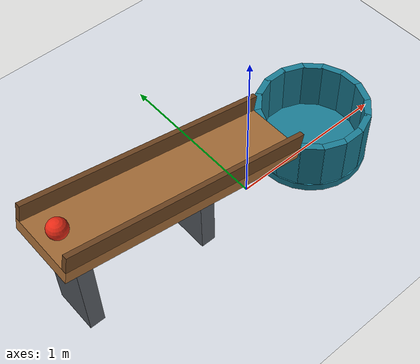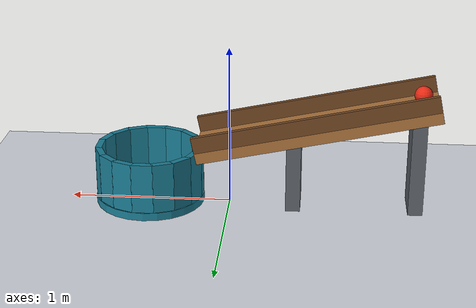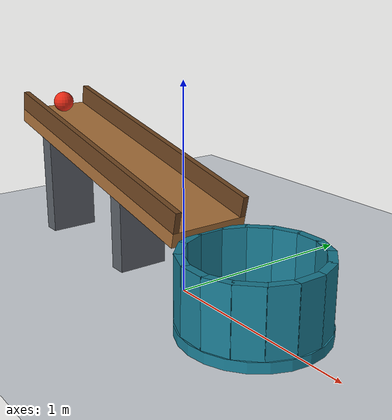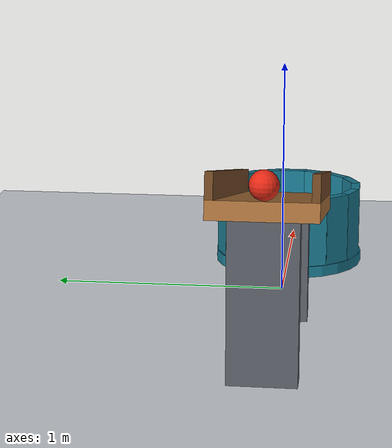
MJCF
<mujoco model="ball_ramp_cup">
  <compiler angle="degree"/>
  <option timestep="0.002" gravity="0 0 -9.81" integrator="implicitfast" cone="elliptic" iterations="60"/>
  <visual>
    <global azimuth="120" elevation="-25"/>
    <rgba haze="0.9 0.94 1 1"/>
  </visual>

  <worldbody>
    <light name="overhead" pos="-0.5 -1 3" dir="0.2 0.3 -1" diffuse="0.8 0.8 0.8"/>
    <camera name="overview" pos="-0.45 -3.2 1.8" xyaxes="1 0 0 0 0.43 0.903"/>

    <geom name="floor" type="plane" size="3 2 0.1" rgba="0.82 0.84 0.87 1" friction="1 0.01 0.005" condim="6"/>

    <!-- The ramp slopes downward toward positive x by 12 degrees. -->
    <body name="ramp" pos="-0.540888 0 0.511699" quat="0.994521895 0 0.104528463 0">
      <geom name="ramp_surface" type="box" size="0.75 0.20 0.035" rgba="0.65 0.43 0.22 1" friction="0.9 0.005 0.0005" condim="6" solref="0.01 1" solimp="0.95 0.99 0.001"/>
      <geom name="ramp_rail_left" type="box" pos="0 0.185 0.085" size="0.75 0.015 0.05" rgba="0.43 0.27 0.13 1" friction="0.8 0.005 0.0005" condim="6"/>
      <geom name="ramp_rail_right" type="box" pos="0 -0.185 0.085" size="0.75 0.015 0.05" rgba="0.43 0.27 0.13 1" friction="0.8 0.005 0.0005" condim="6"/>
    </body>

    <body name="ramp_stand">
      <geom name="ramp_support_upper" type="box" pos="-1.15 0 0.3075" size="0.045 0.13 0.3075" rgba="0.35 0.37 0.40 1"/>
      <geom name="ramp_support_lower" type="box" pos="-0.40 0 0.2275" size="0.045 0.13 0.2275" rgba="0.35 0.37 0.40 1"/>
    </body>

    <!-- An open cup: a solid bottom and sixteen overlapping wall segments. -->
    <body name="cup" pos="0.50 0 0">
      <geom name="cup_bottom" type="cylinder" pos="0 0 0.025" size="0.34 0.025" rgba="0.10 0.48 0.57 1" friction="1.2 0.01 0.006" condim="6" solref="0.01 1" solimp="0.95 0.99 0.001"/>
      <geom name="cup_wall_00" type="box" pos="0.310000 0 0.205" euler="0 0 0" size="0.02 0.067 0.155" rgba="0.10 0.48 0.57 1" friction="1.2 0.01 0.006" condim="6" solref="0.01 1"/>
      <geom name="cup_wall_01" type="box" pos="0.286403 0.118632 0.205" euler="0 0 22.5" size="0.02 0.067 0.155" rgba="0.10 0.48 0.57 1" friction="1.2 0.01 0.006" condim="6" solref="0.01 1"/>
      <geom name="cup_wall_02" type="box" pos="0.219203 0.219203 0.205" euler="0 0 45" size="0.02 0.067 0.155" rgba="0.10 0.48 0.57 1" friction="1.2 0.01 0.006" condim="6" solref="0.01 1"/>
      <geom name="cup_wall_03" type="box" pos="0.118632 0.286403 0.205" euler="0 0 67.5" size="0.02 0.067 0.155" rgba="0.10 0.48 0.57 1" friction="1.2 0.01 0.006" condim="6" solref="0.01 1"/>
      <geom name="cup_wall_04" type="box" pos="0 0.310000 0.205" euler="0 0 90" size="0.02 0.067 0.155" rgba="0.10 0.48 0.57 1" friction="1.2 0.01 0.006" condim="6" solref="0.01 1"/>
      <geom name="cup_wall_05" type="box" pos="-0.118632 0.286403 0.205" euler="0 0 112.5" size="0.02 0.067 0.155" rgba="0.10 0.48 0.57 1" friction="1.2 0.01 0.006" condim="6" solref="0.01 1"/>
      <geom name="cup_wall_06" type="box" pos="-0.219203 0.219203 0.205" euler="0 0 135" size="0.02 0.067 0.155" rgba="0.10 0.48 0.57 1" friction="1.2 0.01 0.006" condim="6" solref="0.01 1"/>
      <geom name="cup_wall_07" type="box" pos="-0.286403 0.118632 0.205" euler="0 0 157.5" size="0.02 0.067 0.155" rgba="0.10 0.48 0.57 1" friction="1.2 0.01 0.006" condim="6" solref="0.01 1"/>
      <geom name="cup_wall_08" type="box" pos="-0.310000 0 0.205" euler="0 0 180" size="0.02 0.067 0.155" rgba="0.10 0.48 0.57 1" friction="1.2 0.01 0.006" condim="6" solref="0.01 1"/>
      <geom name="cup_wall_09" type="box" pos="-0.286403 -0.118632 0.205" euler="0 0 202.5" size="0.02 0.067 0.155" rgba="0.10 0.48 0.57 1" friction="1.2 0.01 0.006" condim="6" solref="0.01 1"/>
      <geom name="cup_wall_10" type="box" pos="-0.219203 -0.219203 0.205" euler="0 0 225" size="0.02 0.067 0.155" rgba="0.10 0.48 0.57 1" friction="1.2 0.01 0.006" condim="6" solref="0.01 1"/>
      <geom name="cup_wall_11" type="box" pos="-0.118632 -0.286403 0.205" euler="0 0 247.5" size="0.02 0.067 0.155" rgba="0.10 0.48 0.57 1" friction="1.2 0.01 0.006" condim="6" solref="0.01 1"/>
      <geom name="cup_wall_12" type="box" pos="0 -0.310000 0.205" euler="0 0 270" size="0.02 0.067 0.155" rgba="0.10 0.48 0.57 1" friction="1.2 0.01 0.006" condim="6" solref="0.01 1"/>
      <geom name="cup_wall_13" type="box" pos="0.118632 -0.286403 0.205" euler="0 0 292.5" size="0.02 0.067 0.155" rgba="0.10 0.48 0.57 1" friction="1.2 0.01 0.006" condim="6" solref="0.01 1"/>
      <geom name="cup_wall_14" type="box" pos="0.219203 -0.219203 0.205" euler="0 0 315" size="0.02 0.067 0.155" rgba="0.10 0.48 0.57 1" friction="1.2 0.01 0.006" condim="6" solref="0.01 1"/>
      <geom name="cup_wall_15" type="box" pos="0.286403 -0.118632 0.205" euler="0 0 337.5" size="0.02 0.067 0.155" rgba="0.10 0.48 0.57 1" friction="1.2 0.01 0.006" condim="6" solref="0.01 1"/>
    </body>

    <body name="ball" pos="-1.167753 0 0.736954">
      <freejoint/>
      <geom name="ball" type="sphere" size="0.055" mass="0.12" rgba="0.90 0.16 0.08 1" friction="0.9 0.005 0.0005" condim="6" solref="0.01 1" solimp="0.95 0.99 0.001"/>
    </body>
  </worldbody>

  <keyframe>
    <key name="start" qpos="-1.167753 0 0.736954 1 0 0 0" qvel="0 0 0 0 0 0"/>
  </keyframe>
</mujoco>
